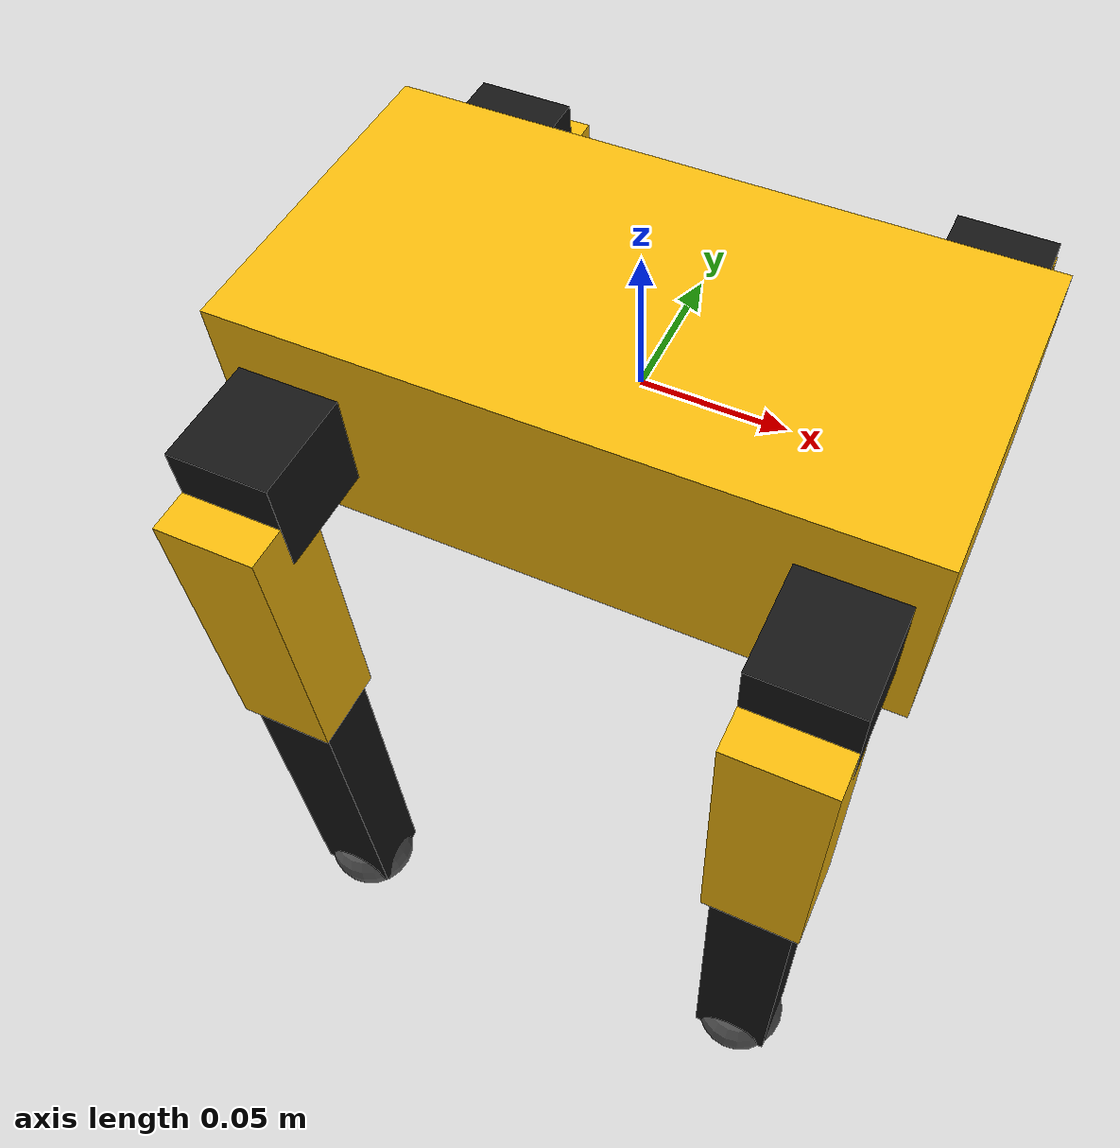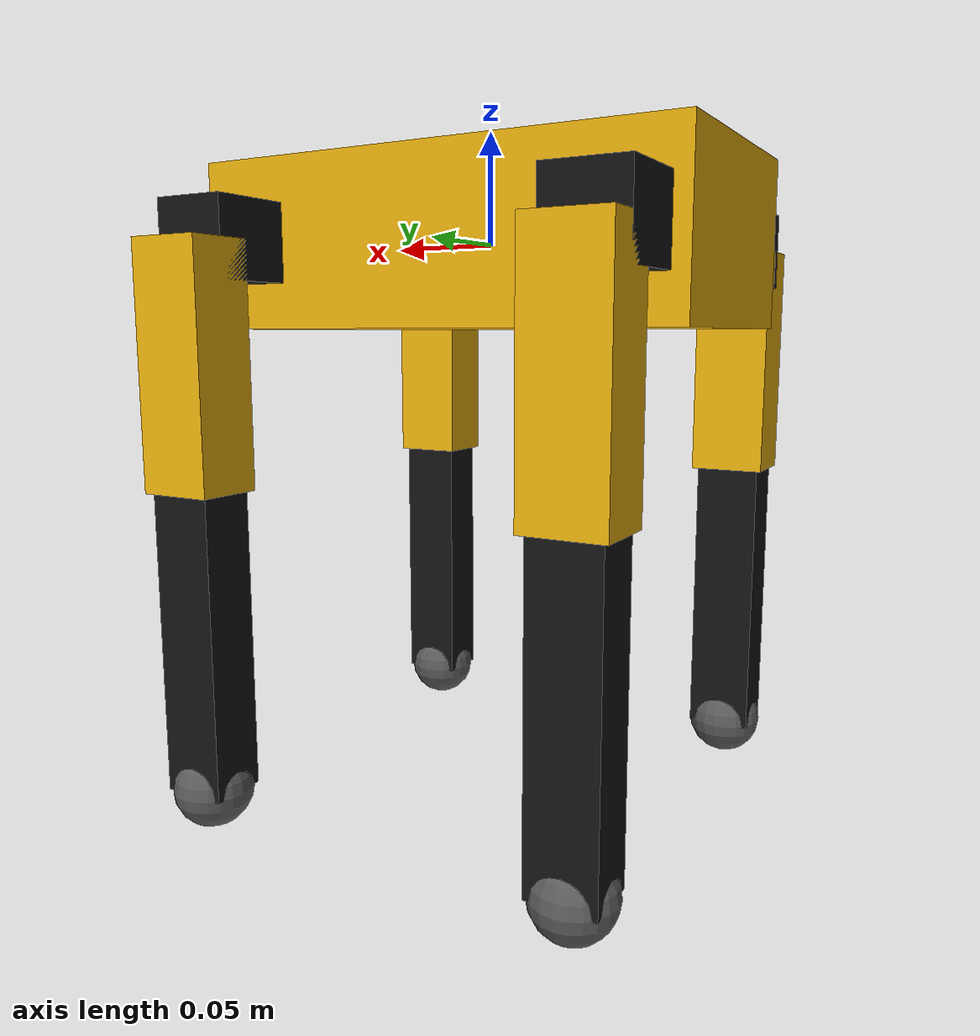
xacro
<?xml version="1.0"?>
<robot xmlns:xacro="http://www.ros.org/wiki/xacro" name="nova_sm3">
  <xacro:arg name="use_fake_hardware" default="true"/>
  <xacro:arg name="use_mujoco" default="false"/>
  <xacro:arg name="use_gazebo" default="false"/>
  <xacro:arg name="headless" default="false"/>
  <xacro:arg name="sim_speed_factor" default="1.0"/>
  <xacro:arg name="include_ros2_control" default="true"/>
  <!-- Experimental scales shared with generated MuJoCo profiles. -->
  <xacro:arg name="mass_scale" default="1.0"/>
  <xacro:arg name="inertia_scale" default="1.0"/>
  <xacro:arg name="joint_damping" default="0.08"/>
  <xacro:arg name="joint_friction" default="0.03"/>
  <xacro:arg name="actuator_effort" default="1.0787315"/>
  <xacro:arg name="actuator_velocity" default="6.981317"/>
  <xacro:arg name="mujoco_model" default="$(find nova_sm3_description)/mujoco/nova_sm3.xml"/>

  <xacro:include filename="$(find nova_sm3_description)/urdf/nova_sm3.materials.xacro"/>
  <xacro:include filename="$(find nova_sm3_description)/urdf/nova_sm3.ros2_control.xacro"/>

  <xacro:property name="hip_spacing_x" value="0.180"/>
  <xacro:property name="hip_spacing_y" value="0.120"/>
  <xacro:property name="coxa_length" value="0.0381"/>
  <xacro:property name="femur_length" value="0.10795"/>
  <xacro:property name="tibia_length" value="0.13589"/>
  <xacro:property name="body_length" value="0.230"/>
  <xacro:property name="body_width" value="0.120"/>
  <xacro:property name="body_height" value="0.075"/>

  <!-- Estimated distribution sums to the published approximate total 2.72 kg. -->
  <xacro:property name="mass_scale" value="$(arg mass_scale)"/>
  <xacro:property name="inertia_scale" value="$(arg inertia_scale)"/>
  <xacro:property name="joint_damping" value="$(arg joint_damping)"/>
  <xacro:property name="joint_friction" value="$(arg joint_friction)"/>
  <xacro:property name="actuator_effort" value="$(arg actuator_effort)"/>
  <xacro:property name="actuator_velocity" value="$(arg actuator_velocity)"/>
  <xacro:property name="body_mass" value="${1.20*mass_scale}"/>
  <xacro:property name="coxa_mass" value="${0.12*mass_scale}"/>
  <xacro:property name="femur_mass" value="${0.12*mass_scale}"/>
  <xacro:property name="tibia_mass" value="${0.11*mass_scale}"/>
  <xacro:property name="foot_mass" value="${0.03*mass_scale}"/>

  <xacro:macro name="box_inertial" params="mass x y z origin_x:=0 origin_y:=0 origin_z:=0">
    <inertial>
      <origin xyz="${origin_x} ${origin_y} ${origin_z}"/>
      <mass value="${mass}"/>
      <inertia ixx="${inertia_scale*mass*(y*y+z*z)/12}" ixy="0" ixz="0"
               iyy="${inertia_scale*mass*(x*x+z*z)/12}" iyz="0"
               izz="${inertia_scale*mass*(x*x+y*y)/12}"/>
    </inertial>
  </xacro:macro>

  <xacro:macro name="nova_leg" params="prefix x y side">
    <link name="${prefix}_coxa_link">
      <visual><origin xyz="0 ${side*coxa_length/2} 0"/><geometry><box size="0.035 ${coxa_length} 0.035"/></geometry><material name="nova_black"/></visual>
      <collision><origin xyz="0 ${side*coxa_length/2} 0"/><geometry><box size="0.035 ${coxa_length} 0.035"/></geometry></collision>
      <xacro:box_inertial mass="${coxa_mass}" x="0.035" y="${coxa_length}" z="0.035" origin_y="${side*coxa_length/2}"/>
    </link>
    <joint name="${prefix}_coxa_joint" type="revolute">
      <parent link="base_link"/><child link="${prefix}_coxa_link"/>
      <origin xyz="${x} ${y} 0"/><axis xyz="${side} 0 0"/>
      <!-- Placeholder mechanical envelope; replace after physical calibration. -->
      <limit lower="-0.60" upper="0.60" effort="${actuator_effort}" velocity="${actuator_velocity}"/>
      <dynamics damping="${joint_damping}" friction="${joint_friction}"/>
    </joint>

    <link name="${prefix}_femur_link">
      <visual><origin xyz="0 0 ${-femur_length/2}"/><geometry><box size="0.035 0.030 ${femur_length}"/></geometry><material name="nova_yellow"/></visual>
      <collision><origin xyz="0 0 ${-femur_length/2}"/><geometry><box size="0.035 0.030 ${femur_length}"/></geometry></collision>
      <xacro:box_inertial mass="${femur_mass}" x="0.035" y="0.030" z="${femur_length}" origin_z="${-femur_length/2}"/>
    </link>
    <joint name="${prefix}_femur_joint" type="revolute">
      <parent link="${prefix}_coxa_link"/><child link="${prefix}_femur_link"/>
      <origin xyz="0 ${side*coxa_length} 0"/><axis xyz="0 1 0"/>
      <limit lower="-1.20" upper="1.20" effort="${actuator_effort}" velocity="${actuator_velocity}"/>
      <dynamics damping="${joint_damping}" friction="${joint_friction}"/>
    </joint>

    <link name="${prefix}_tibia_link">
      <visual><origin xyz="0 0 ${-tibia_length/2}"/><geometry><box size="0.030 0.025 ${tibia_length}"/></geometry><material name="nova_black"/></visual>
      <collision><origin xyz="0 0 ${-tibia_length/2}"/><geometry><box size="0.030 0.025 ${tibia_length}"/></geometry></collision>
      <xacro:box_inertial mass="${tibia_mass}" x="0.030" y="0.025" z="${tibia_length}" origin_z="${-tibia_length/2}"/>
    </link>
    <joint name="${prefix}_tibia_joint" type="revolute">
      <parent link="${prefix}_femur_link"/><child link="${prefix}_tibia_link"/>
      <origin xyz="0 0 ${-femur_length}"/><axis xyz="0 1 0"/>
      <limit lower="-2.20" upper="0.10" effort="${actuator_effort}" velocity="${actuator_velocity}"/>
      <dynamics damping="${joint_damping}" friction="${joint_friction}"/>
    </joint>

    <link name="${prefix}_foot_link">
      <visual><geometry><sphere radius="0.018"/></geometry><material name="nova_grey"/></visual>
      <collision name="${prefix}_foot_collision"><geometry><sphere radius="0.018"/></geometry></collision>
      <inertial><mass value="${foot_mass}"/><inertia ixx="${0.0000039*mass_scale*inertia_scale}" ixy="0" ixz="0" iyy="${0.0000039*mass_scale*inertia_scale}" iyz="0" izz="${0.0000039*mass_scale*inertia_scale}"/></inertial>
    </link>
    <joint name="${prefix}_foot_joint" type="fixed">
      <parent link="${prefix}_tibia_link"/><child link="${prefix}_foot_link"/>
      <origin xyz="0 0 ${-tibia_length}"/>
    </joint>
    <xacro:if value="$(arg use_gazebo)">
      <gazebo reference="${prefix}_foot_joint">
        <preserveFixedJoint>true</preserveFixedJoint>
      </gazebo>
      <gazebo reference="${prefix}_foot_link">
        <sensor name="${prefix}_contact_sensor" type="contact">
          <always_on>true</always_on>
          <update_rate>100</update_rate>
          <contact>
            <collision>${prefix}_foot_link_fixed_joint_lump__${prefix}_foot_collision_collision</collision>
            <topic>/nova/contacts/${prefix}</topic>
          </contact>
        </sensor>
      </gazebo>
    </xacro:if>
  </xacro:macro>

  <link name="base_link">
    <visual><geometry><box size="${body_length} ${body_width} ${body_height}"/></geometry><material name="nova_yellow"/></visual>
    <collision><geometry><box size="${body_length} ${body_width} ${body_height}"/></geometry></collision>
    <xacro:box_inertial mass="${body_mass}" x="${body_length}" y="${body_width}" z="${body_height}"/>
  </link>

  <link name="imu_link"/>
  <joint name="imu_joint" type="fixed"><parent link="base_link"/><child link="imu_link"/><origin xyz="0 0 0"/></joint>
  <xacro:if value="$(arg use_gazebo)">
    <!-- Sensor on base_link: imu_link is a zero-mass visualization frame and
         may be lumped by URDF->SDF without losing the measurement. -->
    <gazebo reference="base_link">
      <sensor name="nova_imu_sensor" type="imu">
        <always_on>true</always_on>
        <update_rate>100</update_rate>
        <topic>/nova/imu</topic>
      </sensor>
    </gazebo>
  </xacro:if>

  <xacro:nova_leg prefix="front_left"  x="${ hip_spacing_x/2}" y="${ hip_spacing_y/2}" side="1"/>
  <xacro:nova_leg prefix="front_right" x="${ hip_spacing_x/2}" y="${-hip_spacing_y/2}" side="-1"/>
  <xacro:nova_leg prefix="rear_left"   x="${-hip_spacing_x/2}" y="${ hip_spacing_y/2}" side="1"/>
  <xacro:nova_leg prefix="rear_right"  x="${-hip_spacing_x/2}" y="${-hip_spacing_y/2}" side="-1"/>

  <xacro:if value="$(arg include_ros2_control)">
    <xacro:nova_ros2_control use_fake_hardware="$(arg use_fake_hardware)" use_mujoco="$(arg use_mujoco)" use_gazebo="$(arg use_gazebo)" headless="$(arg headless)" mujoco_model="$(arg mujoco_model)" sim_speed_factor="$(arg sim_speed_factor)"/>
  </xacro:if>
  <xacro:if value="$(arg use_gazebo)">
    <gazebo>
      <plugin filename="libgz_ros2_control-system.so" name="gz_ros2_control::GazeboSimROS2ControlPlugin">
        <parameters>$(find nova_sm3_description)/config/controllers.yaml</parameters>
      </plugin>
      <plugin filename="gz-sim-pose-publisher-system" name="gz::sim::systems::PosePublisher">
        <publish_link_pose>false</publish_link_pose>
        <publish_model_pose>true</publish_model_pose>
        <use_pose_vector_msg>true</use_pose_vector_msg>
        <update_frequency>50</update_frequency>
      </plugin>
    </gazebo>
  </xacro:if>
</robot>

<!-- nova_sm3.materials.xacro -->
<robot xmlns:xacro="http://www.ros.org/wiki/xacro">
  <material name="nova_yellow"><color rgba="0.95 0.72 0.05 1"/></material>
  <material name="nova_black"><color rgba="0.08 0.08 0.08 1"/></material>
  <material name="nova_grey"><color rgba="0.35 0.35 0.35 1"/></material>
</robot>
